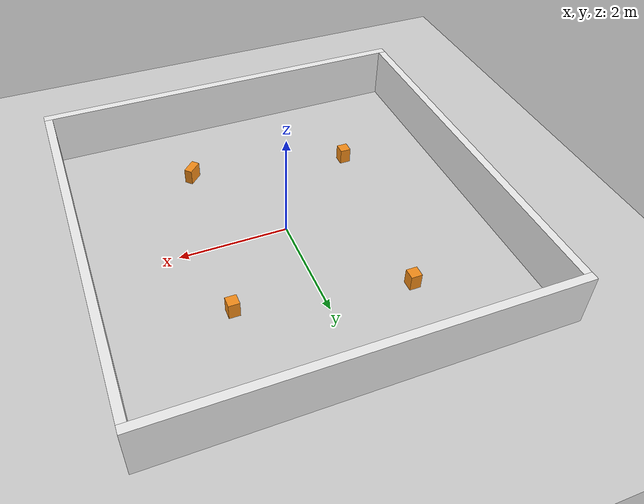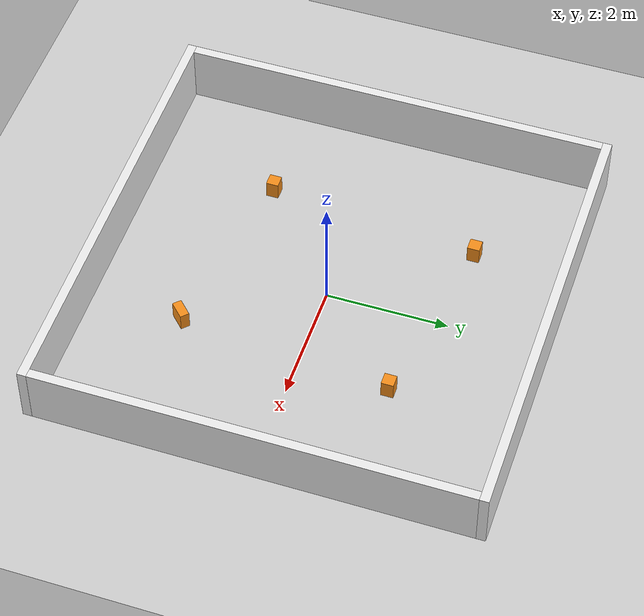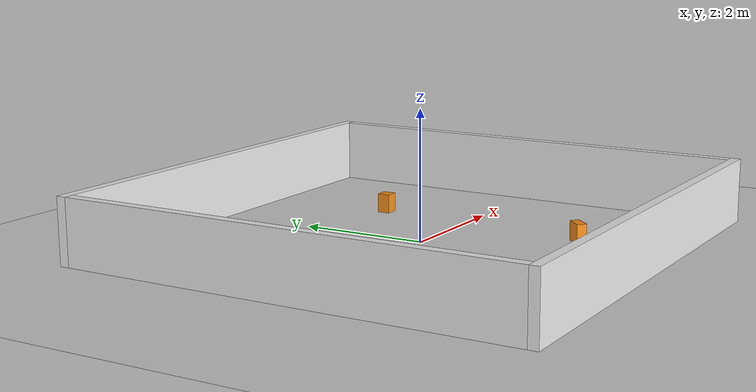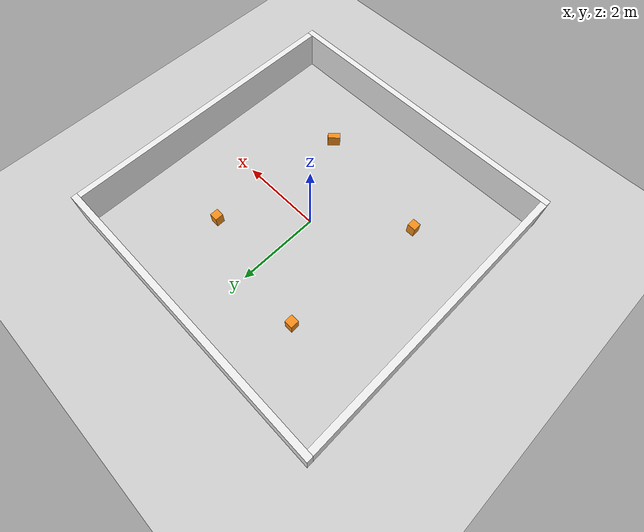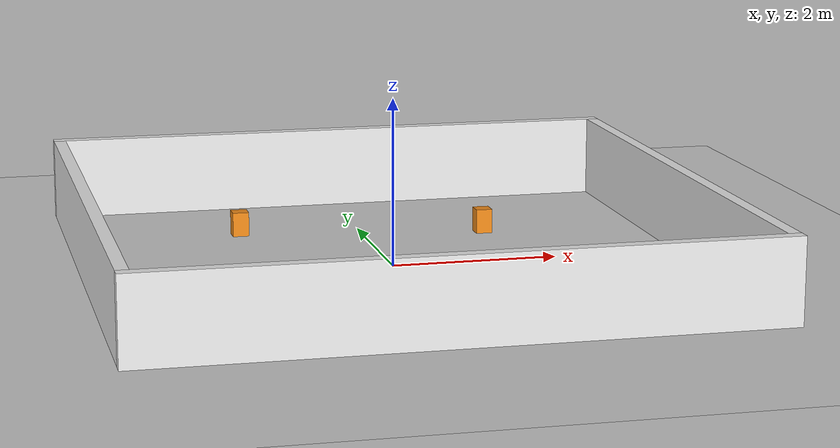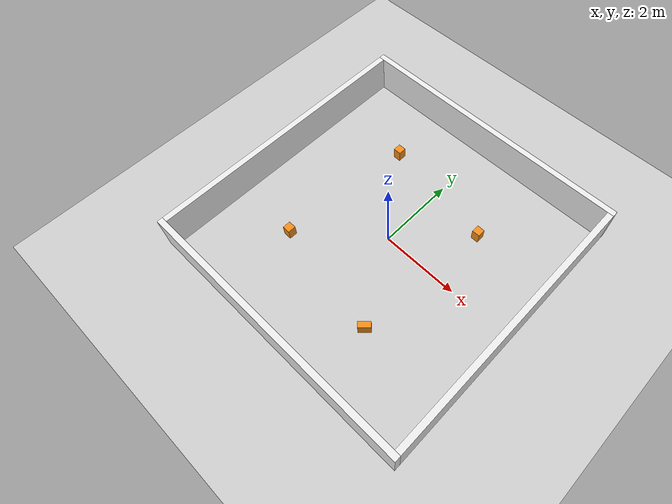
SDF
<sdf version='1.7'>
  <world name='square_room'>
    <physics name="1ms" type="ignored">
      <max_step_size>0.001</max_step_size>
      <real_time_factor>1.0</real_time_factor>
    </physics>
    <plugin
      filename="gz-sim-physics-system"
      name="gz::sim::systems::Physics">
    </plugin>
    <plugin
      filename="gz-sim-user-commands-system"
      name="gz::sim::systems::UserCommands">
    </plugin>
    <plugin
      filename="gz-sim-scene-broadcaster-system"
      name="gz::sim::systems::SceneBroadcaster">
    </plugin>
    <plugin filename="gz-sim-imu-system"
      name="gz::sim::systems::Imu">
    </plugin>
    <plugin
      filename="gz-sim-sensors-system"
      name="gz::sim::systems::Sensors">
      <render_engine>ogre2</render_engine>
    </plugin>

    <light name='sun' type='directional'>
      <cast_shadows>1</cast_shadows>
      <pose>0 0 10 0 -0 0</pose>
      <diffuse>0.8 0.8 0.8 1</diffuse>
      <specular>0.2 0.2 0.2 1</specular>
      <attenuation>
        <range>1000</range>
        <constant>0.9</constant>
        <linear>0.01</linear>
        <quadratic>0.001</quadratic>
      </attenuation>
      <direction>-0.5 0.1 -0.9</direction>
      <spot>
        <inner_angle>0</inner_angle>
        <outer_angle>0</outer_angle>
        <falloff>0</falloff>
      </spot>
    </light>

    <gravity>0 0 -9.8</gravity>
    <magnetic_field>6e-06 2.3e-05 -4.2e-05</magnetic_field>
    <atmosphere type='adiabatic'/>
    <physics type='ode'>
      <max_step_size>0.001</max_step_size>
      <real_time_factor>1</real_time_factor>
      <real_time_update_rate>1000</real_time_update_rate>
    </physics>
    <scene>
      <ambient>0.4 0.4 0.4 1</ambient>
      <background>0.7 0.7 0.7 1</background>
      <shadows>1</shadows>
    </scene>
    <wind/>
    <spherical_coordinates>
      <surface_model>EARTH_WGS84</surface_model>
      <latitude_deg>0</latitude_deg>
      <longitude_deg>0</longitude_deg>
      <elevation>0</elevation>
      <heading_deg>0</heading_deg>
    </spherical_coordinates>

    <!-- Ground plane -->
    <model name='ground_plane'>
      <static>1</static>
      <link name='link'>
        <collision name='collision'>
          <geometry>
            <plane>
              <normal>0 0 1</normal>
              <size>100 100</size>
            </plane>
          </geometry>
          <surface>
            <friction>
              <ode>
                <mu>100</mu>
                <mu2>50</mu2>
              </ode>
              <torsional><ode/></torsional>
            </friction>
            <contact><ode/></contact>
            <bounce/>
          </surface>
          <max_contacts>10</max_contacts>
        </collision>
        <visual name='visual'>
          <cast_shadows>0</cast_shadows>
          <geometry>
            <plane>
              <normal>0 0 1</normal>
              <size>100 100</size>
            </plane>
          </geometry>
          <material>
            <script>
              <uri>file://media/materials/scripts/gazebo.material</uri>
              <name>Gazebo/Grey</name>
            </script>
          </material>
        </visual>
        <self_collide>0</self_collide>
        <enable_wind>0</enable_wind>
        <kinematic>0</kinematic>
      </link>
    </model>

    <!-- North wall  (inner face at y = +3.5) -->
    <model name='wall_north'>
      <static>1</static>
      <pose>0 3.575 0.5 0 0 0</pose>
      <link name='link'>
        <collision name='collision'>
          <geometry>
            <box><size>7.3 0.15 1.0</size></box>
          </geometry>
          <max_contacts>10</max_contacts>
          <surface>
            <contact><ode/></contact>
            <bounce/>
            <friction><torsional><ode/></torsional><ode/></friction>
          </surface>
        </collision>
        <visual name='visual'>
          <geometry>
            <box><size>7.3 0.15 1.0</size></box>
          </geometry>
          <material>
            <script>
              <name>Gazebo/White</name>
              <uri>file://media/materials/scripts/gazebo.material</uri>
            </script>
          </material>
        </visual>
        <self_collide>0</self_collide>
        <enable_wind>0</enable_wind>
        <kinematic>0</kinematic>
      </link>
    </model>

    <!-- South wall  (inner face at y = -3.5) -->
    <model name='wall_south'>
      <static>1</static>
      <pose>0 -3.575 0.5 0 0 0</pose>
      <link name='link'>
        <collision name='collision'>
          <geometry>
            <box><size>7.3 0.15 1.0</size></box>
          </geometry>
          <max_contacts>10</max_contacts>
          <surface>
            <contact><ode/></contact>
            <bounce/>
            <friction><torsional><ode/></torsional><ode/></friction>
          </surface>
        </collision>
        <visual name='visual'>
          <geometry>
            <box><size>7.3 0.15 1.0</size></box>
          </geometry>
          <material>
            <script>
              <name>Gazebo/White</name>
              <uri>file://media/materials/scripts/gazebo.material</uri>
            </script>
          </material>
        </visual>
        <self_collide>0</self_collide>
        <enable_wind>0</enable_wind>
        <kinematic>0</kinematic>
      </link>
    </model>

    <!-- East wall  (inner face at x = +3.5) -->
    <model name='wall_east'>
      <static>1</static>
      <pose>3.575 0 0.5 0 0 0</pose>
      <link name='link'>
        <collision name='collision'>
          <geometry>
            <box><size>0.15 7.0 1.0</size></box>
          </geometry>
          <max_contacts>10</max_contacts>
          <surface>
            <contact><ode/></contact>
            <bounce/>
            <friction><torsional><ode/></torsional><ode/></friction>
          </surface>
        </collision>
        <visual name='visual'>
          <geometry>
            <box><size>0.15 7.0 1.0</size></box>
          </geometry>
          <material>
            <script>
              <name>Gazebo/White</name>
              <uri>file://media/materials/scripts/gazebo.material</uri>
            </script>
          </material>
        </visual>
        <self_collide>0</self_collide>
        <enable_wind>0</enable_wind>
        <kinematic>0</kinematic>
      </link>
    </model>

    <!-- West wall  (inner face at x = -3.5) -->
    <model name='wall_west'>
      <static>1</static>
      <pose>-3.575 0 0.5 0 0 0</pose>
      <link name='link'>
        <collision name='collision'>
          <geometry>
            <box><size>0.15 7.0 1.0</size></box>
          </geometry>
          <max_contacts>10</max_contacts>
          <surface>
            <contact><ode/></contact>
            <bounce/>
            <friction><torsional><ode/></torsional><ode/></friction>
          </surface>
        </collision>
        <visual name='visual'>
          <geometry>
            <box><size>0.15 7.0 1.0</size></box>
          </geometry>
          <material>
            <script>
              <name>Gazebo/White</name>
              <uri>file://media/materials/scripts/gazebo.material</uri>
            </script>
          </material>
        </visual>
        <self_collide>0</self_collide>
        <enable_wind>0</enable_wind>
        <kinematic>0</kinematic>
      </link>
    </model>

    <!-- Small box obstacles for mapping / navigation testing -->

    <!-- Obstacle 1: near NE quadrant -->
    <model name='obstacle_1'>
      <static>1</static>
      <pose>1.5 1.5 0.15 0 0 0</pose>
      <link name='link'>
        <inertial>
          <mass>1</mass>
          <inertia>
            <ixx>0.00833</ixx><ixy>0</ixy><ixz>0</ixz>
            <iyy>0.00833</iyy><iyz>0</iyz>
            <izz>0.00833</izz>
          </inertia>
        </inertial>
        <collision name='collision'>
          <geometry>
            <box><size>0.2 0.2 0.3</size></box>
          </geometry>
          <max_contacts>10</max_contacts>
          <surface>
            <contact><ode/></contact>
            <bounce/>
            <friction><torsional><ode/></torsional><ode/></friction>
          </surface>
        </collision>
        <visual name='visual'>
          <geometry>
            <box><size>0.2 0.2 0.3</size></box>
          </geometry>
          <material>
            <script>
              <name>Gazebo/Orange</name>
              <uri>file://media/materials/scripts/gazebo.material</uri>
            </script>
          </material>
        </visual>
        <self_collide>0</self_collide>
        <enable_wind>0</enable_wind>
        <kinematic>0</kinematic>
      </link>
    </model>

    <!-- Obstacle 2: near SW quadrant -->
    <model name='obstacle_2'>
      <static>1</static>
      <pose>-1.8 -1.5 0.15 0 0 0</pose>
      <link name='link'>
        <inertial>
          <mass>1</mass>
          <inertia>
            <ixx>0.00833</ixx><ixy>0</ixy><ixz>0</ixz>
            <iyy>0.00833</iyy><iyz>0</iyz>
            <izz>0.00833</izz>
          </inertia>
        </inertial>
        <collision name='collision'>
          <geometry>
            <box><size>0.2 0.2 0.3</size></box>
          </geometry>
          <max_contacts>10</max_contacts>
          <surface>
            <contact><ode/></contact>
            <bounce/>
            <friction><torsional><ode/></torsional><ode/></friction>
          </surface>
        </collision>
        <visual name='visual'>
          <geometry>
            <box><size>0.2 0.2 0.3</size></box>
          </geometry>
          <material>
            <script>
              <name>Gazebo/Orange</name>
              <uri>file://media/materials/scripts/gazebo.material</uri>
            </script>
          </material>
        </visual>
        <self_collide>0</self_collide>
        <enable_wind>0</enable_wind>
        <kinematic>0</kinematic>
      </link>
    </model>

    <!-- Obstacle 3: centre-south, slightly off-axis -->
    <model name='obstacle_3'>
      <static>1</static>
      <pose>1.2 -2.0 0.15 0 0 0.785</pose>
      <link name='link'>
        <inertial>
          <mass>1</mass>
          <inertia>
            <ixx>0.00833</ixx><ixy>0</ixy><ixz>0</ixz>
            <iyy>0.00833</iyy><iyz>0</iyz>
            <izz>0.00833</izz>
          </inertia>
        </inertial>
        <collision name='collision'>
          <geometry>
            <box><size>0.3 0.15 0.3</size></box>
          </geometry>
          <max_contacts>10</max_contacts>
          <surface>
            <contact><ode/></contact>
            <bounce/>
            <friction><torsional><ode/></torsional><ode/></friction>
          </surface>
        </collision>
        <visual name='visual'>
          <geometry>
            <box><size>0.3 0.15 0.3</size></box>
          </geometry>
          <material>
            <script>
              <name>Gazebo/Orange</name>
              <uri>file://media/materials/scripts/gazebo.material</uri>
            </script>
          </material>
        </visual>
        <self_collide>0</self_collide>
        <enable_wind>0</enable_wind>
        <kinematic>0</kinematic>
      </link>
    </model>

    <!-- Obstacle 4: near NW quadrant -->
    <model name='obstacle_4'>
      <static>1</static>
      <pose>-1.5 2.0 0.15 0 0 0</pose>
      <link name='link'>
        <inertial>
          <mass>1</mass>
          <inertia>
            <ixx>0.00833</ixx><ixy>0</ixy><ixz>0</ixz>
            <iyy>0.00833</iyy><iyz>0</iyz>
            <izz>0.00833</izz>
          </inertia>
        </inertial>
        <collision name='collision'>
          <geometry>
            <box><size>0.2 0.2 0.3</size></box>
          </geometry>
          <max_contacts>10</max_contacts>
          <surface>
            <contact><ode/></contact>
            <bounce/>
            <friction><torsional><ode/></torsional><ode/></friction>
          </surface>
        </collision>
        <visual name='visual'>
          <geometry>
            <box><size>0.2 0.2 0.3</size></box>
          </geometry>
          <material>
            <script>
              <name>Gazebo/Orange</name>
              <uri>file://media/materials/scripts/gazebo.material</uri>
            </script>
          </material>
        </visual>
        <self_collide>0</self_collide>
        <enable_wind>0</enable_wind>
        <kinematic>0</kinematic>
      </link>
    </model>

    <gui fullscreen='0'>
      <camera name='user_camera'>
        <pose>0 -14 10 0 0.6 1.5708</pose>
        <view_controller>orbit</view_controller>
        <projection_type>perspective</projection_type>
      </camera>
    </gui>

  </world>
</sdf>
